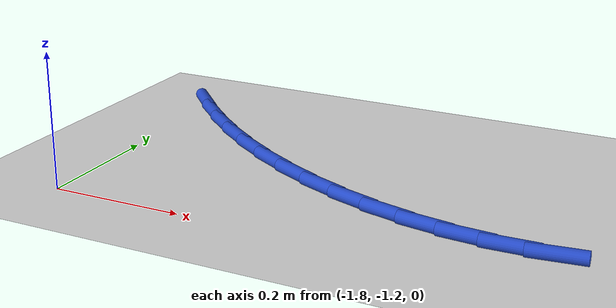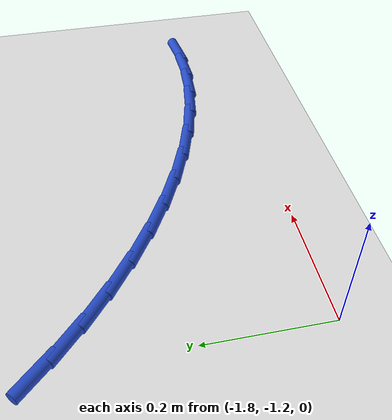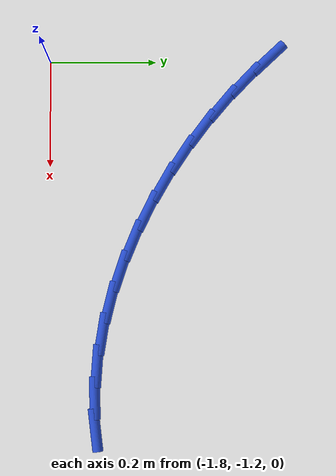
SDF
<sdf version="1.6">
 <world name="default">
  <model name="ground_plane">
   <static>1</static>
   <link name="link">
    <collision name="collision">
     <geometry><plane><normal>0 0 1</normal><size>100 100</size></plane></geometry>
     <surface><friction><ode><mu>100</mu><mu2>50</mu2></ode></friction></surface>
    </collision>
    <visual name="visual">
     <cast_shadows>0</cast_shadows>
     <geometry><plane><normal>0 0 1</normal><size>100 100</size></plane></geometry>
     <material>
      <script><uri>file://media/materials/scripts/gazebo.material</uri><name>Gazebo/WhiteGlow</name></script>
     </material>
    </visual>
   </link>
  </model>
  <model name="line">
   <link name="link_69">
    <pose>-1.804719762830979 -0.7857670726261263 0.01 0 1.57 -0.8183278546639888</pose>
    <collision name="collision">
     <geometry><cylinder><radius>0.01</radius><length>0.08</length></cylinder></geometry>
    </collision>
    <visual name="visual">
     <material>
      <script><name>Gazebo/Blue</name><uri>file://media/materials/scripts/gazebo.material</uri></script>
     </material>
     <geometry><cylinder><radius>0.01</radius><length>0.08</length></cylinder></geometry>
    </visual>
   </link>
   <link name="link_70">
    <pose>-1.7630274997402777 -0.8302997222166228 0.01 0 1.57 -0.7600429139476339</pose>
    <collision name="collision">
     <geometry><cylinder><radius>0.01</radius><length>0.08</length></cylinder></geometry>
    </collision>
    <visual name="visual">
     <material>
      <script><name>Gazebo/Blue</name><uri>file://media/materials/scripts/gazebo.material</uri></script>
     </material>
     <geometry><cylinder><radius>0.01</radius><length>0.08</length></cylinder></geometry>
    </visual>
   </link>
   <link name="link_71">
    <pose>-1.718413754558418 -0.8727065657142736 0.01 0 1.57 -0.7012016593086546</pose>
    <collision name="collision">
     <geometry><cylinder><radius>0.01</radius><length>0.08</length></cylinder></geometry>
    </collision>
    <visual name="visual">
     <material>
      <script><name>Gazebo/Blue</name><uri>file://media/materials/scripts/gazebo.material</uri></script>
     </material>
     <geometry><cylinder><radius>0.01</radius><length>0.08</length></cylinder></geometry>
    </visual>
   </link>
   <link name="link_72">
    <pose>-1.6709368841635512 -0.9127934067013406 0.01 0 1.57 -0.6423174650732252</pose>
    <collision name="collision">
     <geometry><cylinder><radius>0.01</radius><length>0.08</length></cylinder></geometry>
    </collision>
    <visual name="visual">
     <material>
      <script><name>Gazebo/Blue</name><uri>file://media/materials/scripts/gazebo.material</uri></script>
     </material>
     <geometry><cylinder><radius>0.01</radius><length>0.08</length></cylinder></geometry>
    </visual>
   </link>
   <link name="link_73">
    <pose>-1.6208910780403027 -0.9502352864620732 0.01 0 1.57 -0.582609695679506</pose>
    <collision name="collision">
     <geometry><cylinder><radius>0.01</radius><length>0.08</length></cylinder></geometry>
    </collision>
    <visual name="visual">
     <material>
      <script><name>Gazebo/Blue</name><uri>file://media/materials/scripts/gazebo.material</uri></script>
     </material>
     <geometry><cylinder><radius>0.01</radius><length>0.08</length></cylinder></geometry>
    </visual>
   </link>
   <link name="link_74">
    <pose>-1.5685925513861425 -0.9846950336657214 0.01 0 1.57 -0.5212146570841947</pose>
    <collision name="collision">
     <geometry><cylinder><radius>0.01</radius><length>0.08</length></cylinder></geometry>
    </collision>
    <visual name="visual">
     <material>
      <script><name>Gazebo/Blue</name><uri>file://media/materials/scripts/gazebo.material</uri></script>
     </material>
     <geometry><cylinder><radius>0.01</radius><length>0.08</length></cylinder></geometry>
    </visual>
   </link>
   <link name="link_75">
    <pose>-1.514357519398545 -1.015835476981534 0.01 0 1.57 -0.457272549703598</pose>
    <collision name="collision">
     <geometry><cylinder><radius>0.01</radius><length>0.08</length></cylinder></geometry>
    </collision>
    <visual name="visual">
     <material>
      <script><name>Gazebo/Blue</name><uri>file://media/materials/scripts/gazebo.material</uri></script>
     </material>
     <geometry><cylinder><radius>0.01</radius><length>0.08</length></cylinder></geometry>
    </visual>
   </link>
   <link name="link_76">
    <pose>-1.45850219727498 -1.0433194450787617 0.01 0 1.57 -0.3899202343050521</pose>
    <collision name="collision">
     <geometry><cylinder><radius>0.01</radius><length>0.08</length></cylinder></geometry>
    </collision>
    <visual name="visual">
     <material>
      <script><name>Gazebo/Blue</name><uri>file://media/materials/scripts/gazebo.material</uri></script>
     </material>
     <geometry><cylinder><radius>0.01</radius><length>0.08</length></cylinder></geometry>
    </visual>
   </link>
   <link name="link_77">
    <pose>-1.401342800212921 -1.0668097666266525 0.01 0 1.57 -0.3182963253731173</pose>
    <collision name="collision">
     <geometry><cylinder><radius>0.01</radius><length>0.08</length></cylinder></geometry>
    </collision>
    <visual name="visual">
     <material>
      <script><name>Gazebo/Blue</name><uri>file://media/materials/scripts/gazebo.material</uri></script>
     </material>
     <geometry><cylinder><radius>0.01</radius><length>0.08</length></cylinder></geometry>
    </visual>
   </link>
   <link name="link_78">
    <pose>-1.3431955434098386 -1.0859692702944572 0.01 0 1.57 -0.2415641215937866</pose>
    <collision name="collision">
     <geometry><cylinder><radius>0.01</radius><length>0.08</length></cylinder></geometry>
    </collision>
    <visual name="visual">
     <material>
      <script><name>Gazebo/Blue</name><uri>file://media/materials/scripts/gazebo.material</uri></script>
     </material>
     <geometry><cylinder><radius>0.01</radius><length>0.08</length></cylinder></geometry>
    </visual>
   </link>
   <link name="link_79">
    <pose>-1.284376642063206 -1.1004607847514238 0.01 0 1.57 -0.15895943669317822</pose>
    <collision name="collision">
     <geometry><cylinder><radius>0.01</radius><length>0.08</length></cylinder></geometry>
    </collision>
    <visual name="visual">
     <material>
      <script><name>Gazebo/Blue</name><uri>file://media/materials/scripts/gazebo.material</uri></script>
     </material>
     <geometry><cylinder><radius>0.01</radius><length>0.08</length></cylinder></geometry>
    </visual>
   </link>
   <link name="link_80">
    <pose>-1.2252023113704937 -1.1099471386668032 0.01 0 1.57 -0.06987043794705168</pose>
    <collision name="collision">
     <geometry><cylinder><radius>0.01</radius><length>0.08</length></cylinder></geometry>
    </collision>
    <visual name="visual">
     <material>
      <script><name>Gazebo/Blue</name><uri>file://media/materials/scripts/gazebo.material</uri></script>
     </material>
     <geometry><cylinder><radius>0.01</radius><length>0.08</length></cylinder></geometry>
    </visual>
   </link>
   <link name="link_81">
    <pose>-1.1659887665291753 -1.1140911607098438 0.01 0 1.57 0.024704499765826594</pose>
    <collision name="collision">
     <geometry><cylinder><radius>0.01</radius><length>0.08</length></cylinder></geometry>
    </collision>
    <visual name="visual">
     <material>
      <script><name>Gazebo/Blue</name><uri>file://media/materials/scripts/gazebo.material</uri></script>
     </material>
     <geometry><cylinder><radius>0.01</radius><length>0.08</length></cylinder></geometry>
    </visual>
   </link>
   <link name="link_82">
    <pose>-1.1070265412639209 -1.1126342320236888 0.01 0 1.57 0.11534093745651947</pose>
    <collision name="collision">
     <geometry><cylinder><radius>0.01</radius><length>0.08</length></cylinder></geometry>
    </collision>
    <visual name="visual">
     <material>
      <script><name>Gazebo/Blue</name><uri>file://media/materials/scripts/gazebo.material</uri></script>
     </material>
     <geometry><cylinder><radius>0.01</radius><length>0.08</length></cylinder></geometry>
    </visual>
   </link>
  </model>
 </world>
</sdf>
